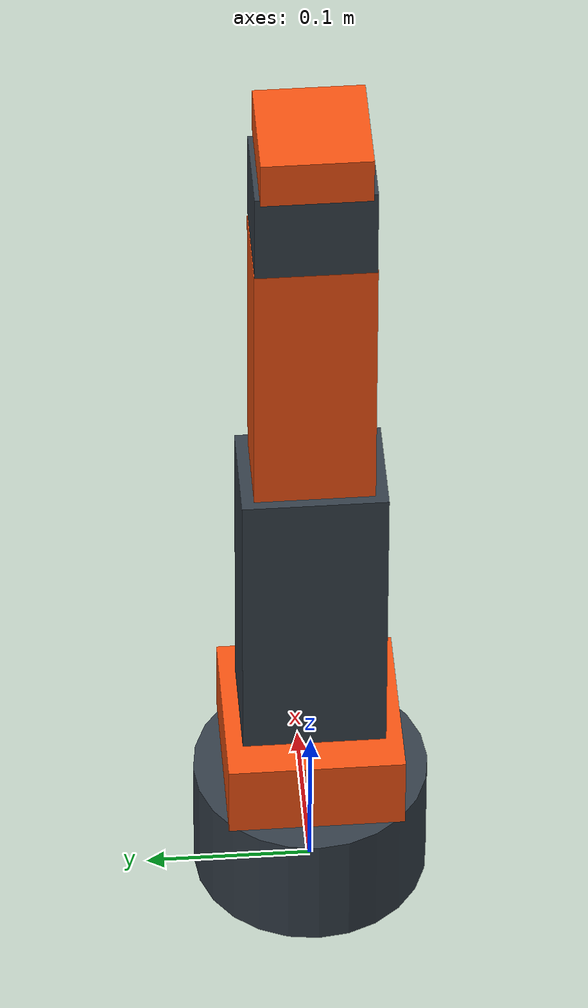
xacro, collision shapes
<?xml version="1.0"?>
<robot xmlns:xacro="http://www.ros.org/wiki/xacro" name="printed_arm_concept">

  <xacro:property name="base_h" value="0.080"/>
  <xacro:property name="shoulder_h" value="0.050"/>
  <xacro:property name="upper_len" value="0.200"/>
  <xacro:property name="fore_len" value="0.180"/>
  <xacro:property name="wrist_len" value="0.060"/>
  <xacro:property name="flange_len" value="0.030"/>
  <xacro:property name="deg" value="${pi / 180.0}"/>

  <!-- STL has no colour information, so each link gets one display material. -->
  <material name="graphite"><color rgba="0.20 0.24 0.28 1"/></material>
  <material name="orange"><color rgba="0.95 0.32 0.07 1"/></material>

  <xacro:macro name="box_inertial" params="mass x y z center_z">
    <inertial>
      <origin xyz="0 0 ${center_z}"/>
      <mass value="${mass}"/>
      <inertia ixx="${mass * (y*y + z*z) / 12}" ixy="0" ixz="0"
               iyy="${mass * (x*x + z*z) / 12}" iyz="0"
               izz="${mass * (x*x + y*y) / 12}"/>
    </inertial>
  </xacro:macro>

  <xacro:macro name="mesh_link" params="name length width_x width_y mass color">
    <link name="${name}">
      <visual>
        <origin xyz="0 0 0" rpy="0 0 0"/>
        <geometry>
          <mesh filename="package://arm_description/meshes/${name}.stl" scale="1 1 1"/>
        </geometry>
        <material name="${color}"/>
      </visual>
      <collision>
        <origin xyz="0 0 ${length / 2}"/>
        <geometry><box size="${width_x} ${width_y} ${length}"/></geometry>
      </collision>
      <xacro:box_inertial mass="${mass}" x="${width_x}" y="${width_y}"
                          z="${length}" center_z="${length / 2}"/>
    </link>
  </xacro:macro>

  <xacro:macro name="rev_joint" params="name parent child z axis lower upper vel">
    <joint name="${name}" type="revolute">
      <parent link="${parent}"/>
      <child link="${child}"/>
      <origin xyz="0 0 ${z}" rpy="0 0 0"/>
      <axis xyz="${axis}"/>
      <limit lower="${lower}" upper="${upper}" velocity="${vel}" effort="5.0"/>
    </joint>
  </xacro:macro>

  <link name="world"/>
  <link name="base_link">
    <visual>
      <origin xyz="0 0 0" rpy="0 0 0"/>
      <geometry><mesh filename="package://arm_description/meshes/base_link.stl" scale="1 1 1"/></geometry>
      <material name="graphite"/>
    </visual>
    <collision>
      <origin xyz="0 0 ${base_h / 2}"/>
      <geometry><cylinder radius="0.071" length="${base_h}"/></geometry>
    </collision>
    <xacro:box_inertial mass="1.0" x="0.142" y="0.174" z="${base_h}"
                        center_z="${base_h / 2}"/>
  </link>

  <joint name="world_to_base" type="fixed">
    <parent link="world"/>
    <child link="base_link"/>
  </joint>

  <xacro:mesh_link name="link1" length="${shoulder_h}" width_x="0.106" width_y="0.106" mass="0.30" color="orange"/>
  <xacro:mesh_link name="link2" length="${upper_len}" width_x="0.062" width_y="0.086" mass="0.25" color="graphite"/>
  <xacro:mesh_link name="link3" length="${fore_len}" width_x="0.051" width_y="0.071" mass="0.20" color="orange"/>
  <xacro:mesh_link name="link4" length="${wrist_len}" width_x="0.054" width_y="0.070" mass="0.10" color="graphite"/>
  <xacro:mesh_link name="link5" length="${flange_len}" width_x="0.064" width_y="0.064" mass="0.05" color="orange"/>

  <xacro:rev_joint name="joint1" parent="base_link" child="link1" z="${base_h}" axis="0 0 1" lower="${-170*deg}" upper="${170*deg}" vel="1.0"/>
  <xacro:rev_joint name="joint2" parent="link1" child="link2" z="${shoulder_h}" axis="0 1 0" lower="${-90*deg}" upper="${90*deg}" vel="0.5"/>
  <xacro:rev_joint name="joint3" parent="link2" child="link3" z="${upper_len}" axis="0 1 0" lower="${-135*deg}" upper="${135*deg}" vel="0.7"/>
  <xacro:rev_joint name="joint4" parent="link3" child="link4" z="${fore_len}" axis="0 1 0" lower="${-100*deg}" upper="${100*deg}" vel="1.0"/>
  <xacro:rev_joint name="joint5" parent="link4" child="link5" z="${wrist_len}" axis="0 0 1" lower="${-180*deg}" upper="${180*deg}" vel="1.0"/>

  <link name="tool0"/>
  <joint name="link5_to_tool0" type="fixed">
    <parent link="link5"/>
    <child link="tool0"/>
    <origin xyz="0 0 ${flange_len}"/>
  </joint>
</robot>
